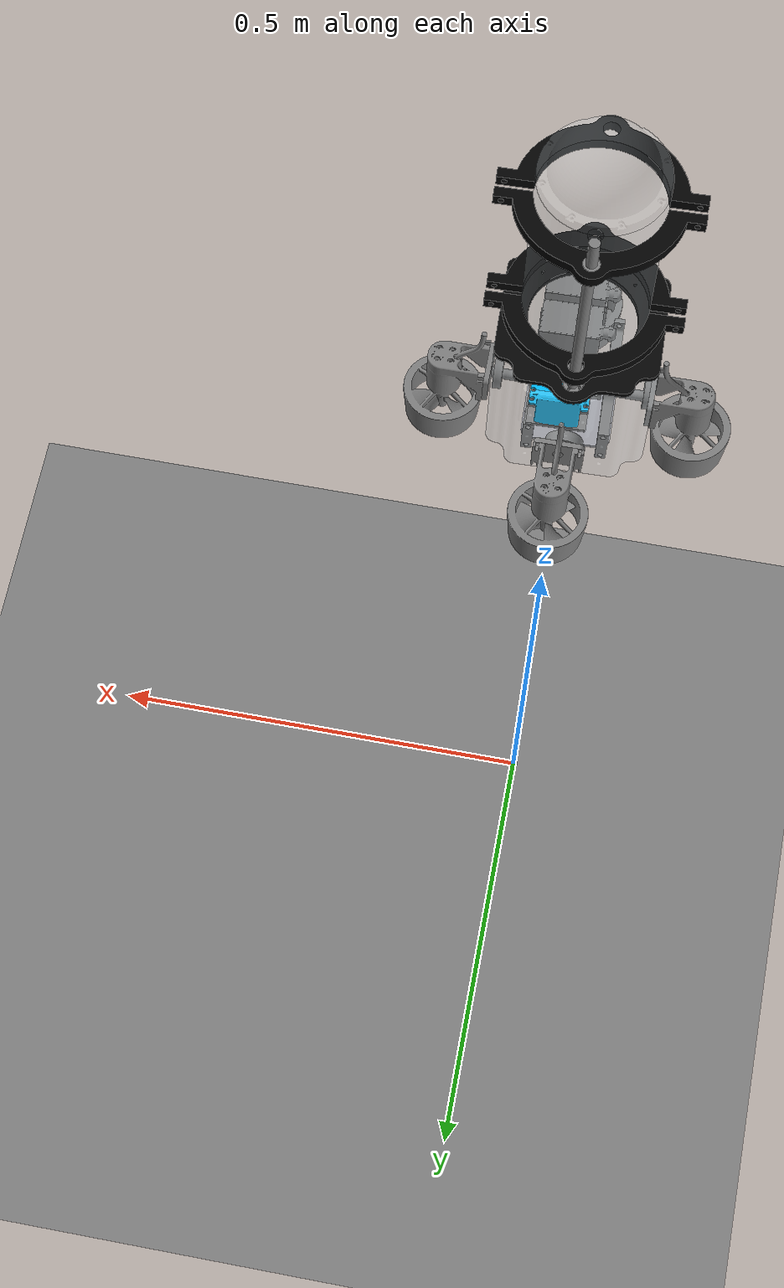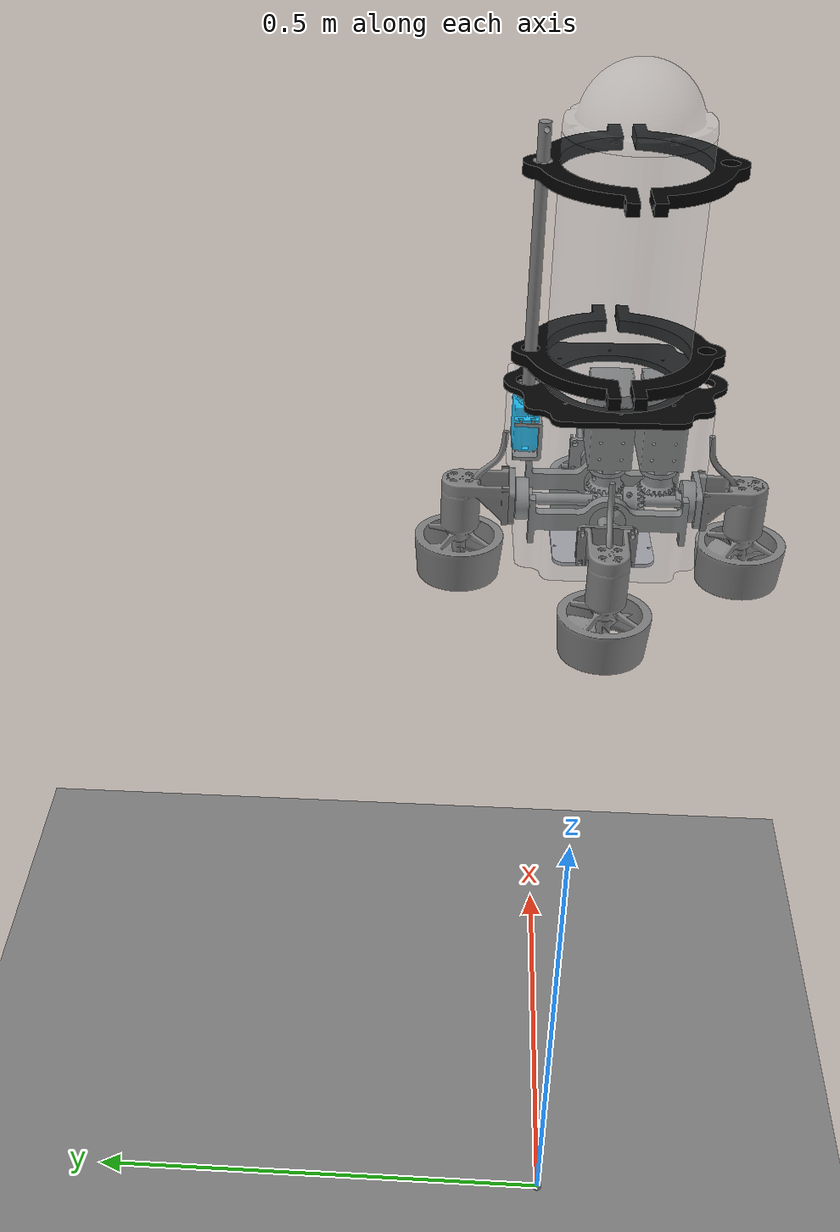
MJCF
<?xml version="1.0" encoding="utf-8"?>
<mujoco model="auv">
  <option timestep="0.01" gravity="0 0 0" integrator="implicitfast" density="1000" viscosity="0.0009">
    <flag />
  </option>

  <compiler meshdir="assets" angle="radian" autolimits="true"/>

  <visual>
    <global realtime="1"/>
    <quality shadowsize="1024" numslices="8" offsamples="0"/>
    <headlight diffuse="1 1 1" specular="0.5 0.5 0.5" active="1"/>
    <rgba fog="1 1 1 1" haze="1 1 1 1"/>
  </visual>

  <asset>
    <!-- 所有网格定义保持不变 -->
    <mesh file="ji_chu_zhuang_pei____base_1_2_hao_duo_ji_zhi_jia__3.stl"/>
    <mesh file="ji_chu_zhuang_pei____base_1_y_zhou_chuan_dong_gan__1.stl"/>
    <mesh file="ji_chu_zhuang_pei____base_1__dong_li_zhuang_zhi_wai_ke____shang_gai__2.stl"/>
    <mesh file="ji_chu_zhuang_pei____base_1__dong_li_zhuang_zhi_wai_ke____di_ban__1.stl"/>
    <mesh file="ji_chu_zhuang_pei____base_1__ban_yuan_cang_gai__1.stl"/>
    <mesh file="ji_chu_zhuang_pei____base_1__gu_ding_huan__1.stl"/>
    <mesh file="ji_chu_zhuang_pei____base_1__gu_ding_huan__2.stl"/>
    <mesh file="ji_chu_zhuang_pei____base_1__gu_ding_huan__3.stl"/>
    <mesh file="ji_chu_zhuang_pei____base_1__gu_ding_huan__4.stl"/>
    <mesh file="ji_chu_zhuang_pei____base_1__yuan_tong_xiang_ti__1.stl"/>
    <mesh file="ji_chu_zhuang_pei____base_1__yuan_zhui_chi_lun_20_1_5_1.stl"/>
    <mesh file="ji_chu_zhuang_pei____base_1__yuan_zhui_chi_lun_20_1_5_4.stl"/>
    <mesh file="ji_chu_zhuang_pei____base_1__yuan_zhui_chi_lun_20_1_5_5.stl"/>
    <mesh file="ji_chu_zhuang_pei____base_1__yuan_zhui_chi_lun_20_1_5_6.stl"/>
    <mesh file="ji_chu_zhuang_pei____base_1__yuan_zhui_chi_lun_20_1_5_7.stl"/>
    <mesh file="ji_chu_zhuang_pei____base_1__jia_zhao_chuan_dong_zhou__2.stl"/>
    <mesh file="ji_chu_zhuang_pei____base_1__jia_zhao_chuan_dong_zhou_lian_jie_jian__1.stl"/>
    <mesh file="ji_chu_zhuang_pei____base_1__xuan_bi_liang_zhi_cheng__1.stl"/>
    <mesh file="ji_chu_zhuang_pei____base_1__xuan_bi_liang_zhi_cheng__2.stl"/>
    <mesh file="ji_chu_zhuang_pei____base_1__jian_xiu_gai__1.stl"/>
    <mesh file="ji_chu_zhuang_pei____base_1__duo_ji___zhou_lian_jie_jian__1.stl"/>
    <mesh file="ji_chu_zhuang_pei____base_1__duo_ji___zhou_lian_jie_jian__2.stl"/>
    <mesh file="ji_chu_zhuang_pei____base_1__zhou_cheng_6200_1.stl"/>
    <mesh file="ji_chu_zhuang_pei____base_1__zhou_cheng_6200_2.stl"/>
    <mesh file="ji_chu_zhuang_pei____base_1__zhou_cheng_6200_3.stl"/>
    <mesh file="ji_chu_zhuang_pei____base_1__zhou_cheng_6200_4.stl"/>
    <mesh file="ji_chu_zhuang_pei____base_1__zhou_cheng_6202_1.stl"/>
    <mesh file="ji_chu_zhuang_pei____base_1__zhou_cheng_6202_2.stl"/>
    <mesh file="ji_chu_zhuang_pei____base_1__zhou_cheng_nei_10_wai_15_hou_4_1.stl"/>
    <mesh file="ji_chu_zhuang_pei____base_1__zhou_cheng_nei_10_wai_15_hou_4_2.stl"/>
    <mesh file="ji_chu_zhuang_pei____base_1__fang_shui_duo_ji__1.stl"/>
    <mesh file="ji_chu_zhuang_pei____base_1__fang_shui_duo_ji__2.stl"/>
    <mesh file="ji_chu_zhuang_pei____base_1__fang_shui_duo_ji___yi_ban__10.stl"/>
    <mesh file="ji_chu_zhuang_pei____up_1_x_zhou_tui_jin_qi_zhi_jia__1.stl"/>
    <mesh file="ji_chu_zhuang_pei____up_1__tui_jin_qi__1.stl"/>
    <mesh file="ji_chu_zhuang_pei____down_1_x_zhou_tui_jin_qi_zhi_jia__1.stl"/>
    <mesh file="ji_chu_zhuang_pei____down_1__tui_jin_qi__1.stl"/>
    <mesh file="ji_chu_zhuang_pei____left_1_y_zhou_tui_jin_qi_zhi_jia__1.stl"/>
    <mesh file="ji_chu_zhuang_pei____left_1__tui_jin_qi__1.stl"/>
    <mesh file="ji_chu_zhuang_pei____right_1_y_zhou_tui_jin_qi_zhi_jia__1.stl"/>
    <mesh file="ji_chu_zhuang_pei____right_1__tui_jin_qi__1.stl"/>

    <!-- 纹理与材质保持不变 -->
    <texture name="sky" type="skybox" file="assets/desert.png" gridsize="3 4" gridlayout=".U..LFRB.D.."/>
    <texture name="ground" type="2d" builtin="checker" rgb1="0.1 0.1 0.1" rgb2="0.9 0.9 0.9" width="256" height="256" mark="cross" markrgb="0.8 0.8 0.8"/>
    <material name="ground" texture="ground" reflectance="0" texrepeat="1 1" texuniform="true"/>
    <material name="acrylic_hull" rgba="0.9 0.95 0.98 0.15" specular="0.9" shininess="0.7"/>
    <texture name="carbon_texture" type="2d" builtin="checker" rgb1="0.08 0.08 0.08" rgb2="0.15 0.15 0.15" width="512" height="512" mark="edge" markrgb="0.9 0.9 0.9"/>
    <material name="carbon_fiber" texture="carbon_texture" texuniform="true" texrepeat="8 4" rgba="0.1 0.1 0.1 1" specular="0.9" shininess="0.8" reflectance="0.4"/>
    <material name="carbon_fiber_glossy" texture="carbon_texture" texuniform="true" texrepeat="16 8" rgba="0.12 0.12 0.12 1" specular="1.0" shininess="0.9" reflectance="0.6"/>
    <material name="carbon_fiber_matte" texture="carbon_texture" texuniform="true" texrepeat="12 6" rgba="0.15 0.15 0.15 1" specular="0.4" shininess="0.5" reflectance="0.1"/>
  </asset>

  <default>
    <default class="auv_base">
      <default class="visual">
        <geom type="mesh" contype="0" conaffinity="0" density="0" group="2"/>
      </default>
      <default class="collision">
        <geom priority="1" condim="6" group="3"/>
      </default>
      <site rgba="1 0 0 1" group="5"/>
    </default>

    <default class="friction">
      <geom condim="4" friction="0.9 0.5 0.1" solimp="0.9 0.95 0.001 0.5 2" solref="0.02 1"/>
    </default>
    <default class="fluid">
      <geom fluidshape="ellipsoid" fluidcoef="1.2 1.0 1.2 0.1 0.1"/>
    </default>
  </default>

  <worldbody>
    <light type="directional" pos="30 30 30" dir="0 -1 -1" diffuse="0.5 0.5 0.5" ambient="0.3 0.3 0.3" specular="0.5 0.5 0.5"/>
    <geom name="ground" type="plane" material="ground" pos="0 0 0" size="5 5 0.1" class="friction"/>

    <body name="base" pos="0 0 1" childclass="auv_base">
      <freejoint name="base"/>

      <!-- 基础部件：每个部件创建两个geom，视觉（仅渲染）和碰撞（带质量） -->
      <geom class="collision" type="mesh" mesh="ji_chu_zhuang_pei____base_1_2_hao_duo_ji_zhi_jia__3" mass="0.0158"/>
      <geom class="visual" type="mesh" mesh="ji_chu_zhuang_pei____base_1_2_hao_duo_ji_zhi_jia__3"/>
      <geom class="collision" type="mesh" mesh="ji_chu_zhuang_pei____base_1_y_zhou_chuan_dong_gan__1" mass="0.094174"/>
      <geom class="visual" type="mesh" mesh="ji_chu_zhuang_pei____base_1_y_zhou_chuan_dong_gan__1"/>
      <geom class="collision" type="mesh" mesh="ji_chu_zhuang_pei____base_1__dong_li_zhuang_zhi_wai_ke____shang_gai__2" mass="1" material="acrylic_hull"/>
      <geom class="visual" type="mesh" mesh="ji_chu_zhuang_pei____base_1__dong_li_zhuang_zhi_wai_ke____shang_gai__2" material="acrylic_hull"/>
      <geom class="collision" type="mesh" mesh="ji_chu_zhuang_pei____base_1__dong_li_zhuang_zhi_wai_ke____di_ban__1" mass="0.118807" material="carbon_fiber_matte"/>
      <geom class="visual" type="mesh" mesh="ji_chu_zhuang_pei____base_1__dong_li_zhuang_zhi_wai_ke____di_ban__1" material="carbon_fiber_matte"/>
      <geom class="collision" type="mesh" mesh="ji_chu_zhuang_pei____base_1__ban_yuan_cang_gai__1" mass="0.18051" material="acrylic_hull"/>
      <geom class="visual" type="mesh" mesh="ji_chu_zhuang_pei____base_1__ban_yuan_cang_gai__1" material="acrylic_hull"/>
      <geom class="collision" type="mesh" mesh="ji_chu_zhuang_pei____base_1__gu_ding_huan__1" mass="0.0682515" material="carbon_fiber"/>
      <geom class="visual" type="mesh" mesh="ji_chu_zhuang_pei____base_1__gu_ding_huan__1" material="carbon_fiber"/>
      <geom class="collision" type="mesh" mesh="ji_chu_zhuang_pei____base_1__gu_ding_huan__2" mass="0.0682515" material="carbon_fiber"/>
      <geom class="visual" type="mesh" mesh="ji_chu_zhuang_pei____base_1__gu_ding_huan__2" material="carbon_fiber"/>
      <geom class="collision" type="mesh" mesh="ji_chu_zhuang_pei____base_1__gu_ding_huan__3" mass="0.0682515" material="carbon_fiber"/>
      <geom class="visual" type="mesh" mesh="ji_chu_zhuang_pei____base_1__gu_ding_huan__3" material="carbon_fiber"/>
      <geom class="collision" type="mesh" mesh="ji_chu_zhuang_pei____base_1__gu_ding_huan__4" mass="0.0682515" material="carbon_fiber"/>
      <geom class="visual" type="mesh" mesh="ji_chu_zhuang_pei____base_1__gu_ding_huan__4" material="carbon_fiber"/>
      <geom class="collision" type="mesh" mesh="ji_chu_zhuang_pei____base_1__yuan_tong_xiang_ti__1" mass="0.6" material="acrylic_hull"/>
      <geom class="visual" type="mesh" mesh="ji_chu_zhuang_pei____base_1__yuan_tong_xiang_ti__1" material="acrylic_hull"/>
      <geom class="collision" type="mesh" mesh="ji_chu_zhuang_pei____base_1__yuan_zhui_chi_lun_20_1_5_1" mass="0.053667608"/>
      <geom class="visual" type="mesh" mesh="ji_chu_zhuang_pei____base_1__yuan_zhui_chi_lun_20_1_5_1"/>
      <geom class="collision" type="mesh" mesh="ji_chu_zhuang_pei____base_1__yuan_zhui_chi_lun_20_1_5_4" mass="0.053667608"/>
      <geom class="visual" type="mesh" mesh="ji_chu_zhuang_pei____base_1__yuan_zhui_chi_lun_20_1_5_4"/>
      <geom class="collision" type="mesh" mesh="ji_chu_zhuang_pei____base_1__yuan_zhui_chi_lun_20_1_5_5" mass="0.053667608"/>
      <geom class="visual" type="mesh" mesh="ji_chu_zhuang_pei____base_1__yuan_zhui_chi_lun_20_1_5_5"/>
      <geom class="collision" type="mesh" mesh="ji_chu_zhuang_pei____base_1__yuan_zhui_chi_lun_20_1_5_6" mass="0.053667608"/>
      <geom class="visual" type="mesh" mesh="ji_chu_zhuang_pei____base_1__yuan_zhui_chi_lun_20_1_5_6"/>
      <geom class="collision" type="mesh" mesh="ji_chu_zhuang_pei____base_1__yuan_zhui_chi_lun_20_1_5_7" mass="0.053667608"/>
      <geom class="visual" type="mesh" mesh="ji_chu_zhuang_pei____base_1__yuan_zhui_chi_lun_20_1_5_7"/>
      <geom class="collision" type="mesh" mesh="ji_chu_zhuang_pei____base_1__jia_zhao_chuan_dong_zhou__2" mass="0.135"/>
      <geom class="visual" type="mesh" mesh="ji_chu_zhuang_pei____base_1__jia_zhao_chuan_dong_zhou__2"/>
      <geom class="collision" type="mesh" mesh="ji_chu_zhuang_pei____base_1__jia_zhao_chuan_dong_zhou_lian_jie_jian__1" mass="0.00155358"/>
      <geom class="visual" type="mesh" mesh="ji_chu_zhuang_pei____base_1__jia_zhao_chuan_dong_zhou_lian_jie_jian__1"/>
      <geom class="collision" type="mesh" mesh="ji_chu_zhuang_pei____base_1__xuan_bi_liang_zhi_cheng__1" mass="0.120"/>
      <geom class="visual" type="mesh" mesh="ji_chu_zhuang_pei____base_1__xuan_bi_liang_zhi_cheng__1"/>
      <geom class="collision" type="mesh" mesh="ji_chu_zhuang_pei____base_1__xuan_bi_liang_zhi_cheng__2" mass="0.120"/>
      <geom class="visual" type="mesh" mesh="ji_chu_zhuang_pei____base_1__xuan_bi_liang_zhi_cheng__2"/>
      <geom class="collision" type="mesh" mesh="ji_chu_zhuang_pei____base_1__jian_xiu_gai__1" mass="0.02507244" rgba="0.65 0.65 0.68 1"/>
      <geom class="visual" type="mesh" mesh="ji_chu_zhuang_pei____base_1__jian_xiu_gai__1" rgba="0.65 0.65 0.68 1"/>
      <geom class="collision" type="mesh" mesh="ji_chu_zhuang_pei____base_1__duo_ji___zhou_lian_jie_jian__1" mass="0.03"/>
      <geom class="visual" type="mesh" mesh="ji_chu_zhuang_pei____base_1__duo_ji___zhou_lian_jie_jian__1"/>
      <geom class="collision" type="mesh" mesh="ji_chu_zhuang_pei____base_1__duo_ji___zhou_lian_jie_jian__2" mass="0.03"/>
      <geom class="visual" type="mesh" mesh="ji_chu_zhuang_pei____base_1__duo_ji___zhou_lian_jie_jian__2"/>
      <geom class="collision" type="mesh" mesh="ji_chu_zhuang_pei____base_1__zhou_cheng_6200_1" mass="0.032"/>
      <geom class="visual" type="mesh" mesh="ji_chu_zhuang_pei____base_1__zhou_cheng_6200_1"/>
      <geom class="collision" type="mesh" mesh="ji_chu_zhuang_pei____base_1__zhou_cheng_6200_2" mass="0.032"/>
      <geom class="visual" type="mesh" mesh="ji_chu_zhuang_pei____base_1__zhou_cheng_6200_2"/>
      <geom class="collision" type="mesh" mesh="ji_chu_zhuang_pei____base_1__zhou_cheng_6200_3" mass="0.032"/>
      <geom class="visual" type="mesh" mesh="ji_chu_zhuang_pei____base_1__zhou_cheng_6200_3"/>
      <geom class="collision" type="mesh" mesh="ji_chu_zhuang_pei____base_1__zhou_cheng_6200_4" mass="0.032"/>
      <geom class="visual" type="mesh" mesh="ji_chu_zhuang_pei____base_1__zhou_cheng_6200_4"/>
      <geom class="collision" type="mesh" mesh="ji_chu_zhuang_pei____base_1__zhou_cheng_6202_1" mass="0.032"/>
      <geom class="visual" type="mesh" mesh="ji_chu_zhuang_pei____base_1__zhou_cheng_6202_1"/>
      <geom class="collision" type="mesh" mesh="ji_chu_zhuang_pei____base_1__zhou_cheng_6202_2" mass="0.032"/>
      <geom class="visual" type="mesh" mesh="ji_chu_zhuang_pei____base_1__zhou_cheng_6202_2"/>
      <geom class="collision" type="mesh" mesh="ji_chu_zhuang_pei____base_1__zhou_cheng_nei_10_wai_15_hou_4_1" mass="0.03"/>
      <geom class="visual" type="mesh" mesh="ji_chu_zhuang_pei____base_1__zhou_cheng_nei_10_wai_15_hou_4_1"/>
      <geom class="collision" type="mesh" mesh="ji_chu_zhuang_pei____base_1__zhou_cheng_nei_10_wai_15_hou_4_2" mass="0.03"/>
      <geom class="visual" type="mesh" mesh="ji_chu_zhuang_pei____base_1__zhou_cheng_nei_10_wai_15_hou_4_2"/>
      <geom class="collision" type="mesh" mesh="ji_chu_zhuang_pei____base_1__fang_shui_duo_ji__1" mass="0.36"/>
      <geom class="visual" type="mesh" mesh="ji_chu_zhuang_pei____base_1__fang_shui_duo_ji__1"/>
      <geom class="collision" type="mesh" mesh="ji_chu_zhuang_pei____base_1__fang_shui_duo_ji__2" mass="0.36"/>
      <geom class="visual" type="mesh" mesh="ji_chu_zhuang_pei____base_1__fang_shui_duo_ji__2"/>
      <geom class="collision" type="mesh" mesh="ji_chu_zhuang_pei____base_1__fang_shui_duo_ji___yi_ban__10" mass="0.36" rgba="0.0 0.75 1.0 1"/>
      <geom class="visual" type="mesh" mesh="ji_chu_zhuang_pei____base_1__fang_shui_duo_ji___yi_ban__10" rgba="0.0 0.75 1.0 1"/>

<site name="thrust_up_site" pos="0.07629058 0.00222789 -0.11788090" type="sphere" size="0.01" rgba="1 0 0 0.5"/>
<site name="thrust_down_site" pos="-0.07365844 0.00168283 -0.11788090" type="sphere" size="0.01" rgba="0 1 0 0.5"/>
<site name="thrust_left_site" pos="0.00063929 0.07524704 -0.11788090" type="sphere" size="0.01" rgba="0 0 1 0.5"/>
<site name="thrust_right_site" pos="0.00327143 -0.07470197 -0.11788090" type="sphere" size="0.01" rgba="1 1 0 0.5"/>

<body name="body_servo_up" pos="0.07629058 0.00222789 -0.11788090" euler="0 1.570796326795 0" childclass="auv_base">
        <joint name="joint_servo_up" type="hinge" axis="0 0 1" range="-1.57079632679 1.57079632679" damping="0.1" armature="0.01"/>
        <geom class="collision" type="mesh" mesh="ji_chu_zhuang_pei____up_1_x_zhou_tui_jin_qi_zhi_jia__1" mass="0.1"/>
        <geom class="visual" type="mesh" mesh="ji_chu_zhuang_pei____up_1_x_zhou_tui_jin_qi_zhi_jia__1"/>
        <body name="body_servo_up_prop" pos="0 0 0" childclass="auv_base">
          <joint name="joint_prop_up" type="hinge" axis="0 0 1" range="0 0" damping="0.01" armature="0.001"/>
          <geom class="collision" type="mesh" mesh="ji_chu_zhuang_pei____up_1__tui_jin_qi__1" mass="0.01"/>
          <geom class="visual" type="mesh" mesh="ji_chu_zhuang_pei____up_1__tui_jin_qi__1"/>
        </body>
      </body>

      <body name="body_servo_down" pos="-0.07365844 0.00168283 -0.11788090" euler="0 -1.570796326795 -3.1415926" childclass="auv_base">
        <joint name="joint_servo_down" type="hinge" axis="0 0 1" range="-1.57079632679 1.57079632679" damping="0.1" armature="0.01"/>
        <geom class="collision" type="mesh" mesh="ji_chu_zhuang_pei____down_1_x_zhou_tui_jin_qi_zhi_jia__1" mass="0.1"/>
        <geom class="visual" type="mesh" mesh="ji_chu_zhuang_pei____down_1_x_zhou_tui_jin_qi_zhi_jia__1"/>
        <body name="body_servo_down_prop" pos="0 0 0" childclass="auv_base">
          <joint name="joint_prop_down" type="hinge" axis="0 0 1" range="0 0" damping="0.01" armature="0.001"/>
          <geom class="collision" type="mesh" mesh="ji_chu_zhuang_pei____down_1__tui_jin_qi__1" mass="0.01"/>
          <geom class="visual" type="mesh" mesh="ji_chu_zhuang_pei____down_1__tui_jin_qi__1"/>
        </body>
      </body>

      <body name="body_servo_left" pos="0.00063929 0.07524704 -0.11788090" euler="-1.570796326795 0 1.570796326795" childclass="auv_base">
        <joint name="joint_servo_left" type="hinge" axis="0 0 1" range="-1.57079632679 1.57079632679" damping="0.1" armature="0.01"/>
        <geom class="collision" type="mesh" mesh="ji_chu_zhuang_pei____left_1_y_zhou_tui_jin_qi_zhi_jia__1" mass="0.1"/>
        <geom class="visual" type="mesh" mesh="ji_chu_zhuang_pei____left_1_y_zhou_tui_jin_qi_zhi_jia__1"/>
        <body name="body_servo_left_prop" pos="0 0 0" childclass="auv_base">
          <joint name="joint_prop_left" type="hinge" axis="0 0 1" range="0 0" damping="0.01" armature="0.001"/>
          <geom class="collision" type="mesh" mesh="ji_chu_zhuang_pei____left_1__tui_jin_qi__1" mass="0.01"/>
          <geom class="visual" type="mesh" mesh="ji_chu_zhuang_pei____left_1__tui_jin_qi__1"/>
        </body>
      </body>

      <body name="body_servo_right" pos="0.00327143 -0.07470197 -0.11788090" euler="1.570796326795 0 -1.570796326795" childclass="auv_base">
        <joint name="joint_servo_right" type="hinge" axis="0 0 1" range="-1.57079632679 1.57079632679" damping="0.1" armature="0.01"/>
        <geom class="collision" type="mesh" mesh="ji_chu_zhuang_pei____right_1_y_zhou_tui_jin_qi_zhi_jia__1" mass="0.1"/>
        <geom class="visual" type="mesh" mesh="ji_chu_zhuang_pei____right_1_y_zhou_tui_jin_qi_zhi_jia__1"/>
        <body name="body_servo_right_prop" pos="0 0 0" childclass="auv_base">
          <joint name="joint_prop_right" type="hinge" axis="0 0 1" range="0 0" damping="0.01" armature="0.001"/>
          <geom class="collision" type="mesh" mesh="ji_chu_zhuang_pei____right_1__tui_jin_qi__1" mass="0.01"/>
          <geom class="visual" type="mesh" mesh="ji_chu_zhuang_pei____right_1__tui_jin_qi__1"/>
        </body>
      </body>
    </body>

    <site name="world_z" pos="0 0 0"/>
  </worldbody>

  <equality>
    <joint joint1="joint_servo_down" joint2="joint_servo_up" polycoef="0 1 0 0 0"/>
    <joint joint1="joint_servo_right" joint2="joint_servo_left" polycoef="0 -1 0 0 0"/>
  </equality>

  <contact>
    <exclude body1="base" body2="body_servo_left"/>
    <exclude body1="base" body2="body_servo_right"/>
    <exclude body1="base" body2="body_servo_up"/>
    <exclude body1="base" body2="body_servo_down"/>
  </contact>

  <actuator>
    <position name="servo_v_cmd" joint="joint_servo_up" kp="20" ctrlrange="-1.57 1.57"/>
    <position name="servo_h_cmd" joint="joint_servo_left" kp="20" ctrlrange="-1.57 1.57"/>

    <!-- 上推进器 -->
    <general name="thruster_up_z"
            site="thrust_up_site"
            gaintype="fixed"   gainprm="1 0 0 0 0 0"
            biastype="affine"  biasprm="0 0 0 0 0 0"
            gear="0 0 1 0 0 0" ctrllimited="false"/>
    <general name="thruster_up_y"
            site="thrust_up_site"
            gaintype="fixed"   gainprm="1 0 0 0 0 0"
            biastype="affine"  biasprm="0 0 0 0 0 0"
            gear="0 -1 0 0 0 0" ctrllimited="false"/>

    <!-- 下推进器 -->
    <general name="thruster_down_z"
            site="thrust_down_site"
            gaintype="fixed"   gainprm="1 0 0 0 0 0"
            biastype="affine"  biasprm="0 0 0 0 0 0"
            gear="0 0 1 0 0 0" ctrllimited="false"/>
    <general name="thruster_down_y"
            site="thrust_down_site"
            gaintype="fixed"   gainprm="1 0 0 0 0 0"
            biastype="affine"  biasprm="0 0 0 0 0 0"
            gear="0 1 0 0 0 0" ctrllimited="false"/>

    <!-- 左推进器 -->
    <general name="thruster_left_z"
            site="thrust_left_site"
            gaintype="fixed"   gainprm="1 0 0 0 0 0"
            biastype="affine"  biasprm="0 0 0 0 0 0"
            gear="0 0 1 0 0 0" ctrllimited="false"/>
    <general name="thruster_left_x"
            site="thrust_left_site"
            gaintype="fixed"   gainprm="1 0 0 0 0 0"
            biastype="affine"  biasprm="0 0 0 0 0 0"
            gear="1 0 0 0 0 0" ctrllimited="false"/>

    <!-- 右推进器 -->
    <general name="thruster_right_z"
            site="thrust_right_site"
            gaintype="fixed"   gainprm="1 0 0 0 0 0"
            biastype="affine"  biasprm="0 0 0 0 0 0"
            gear="0 0 1 0 0 0" ctrllimited="false" />
    <!-- 右推进器 -->
    <general name="thruster_right_x"
            site="thrust_right_site"
            gaintype="fixed"   gainprm="1 0 0 0 0 0"
            biastype="affine"  biasprm="0 0 0 0 0 0"
            gear="1 0 0 0 0 0" ctrllimited="false"/>
  </actuator>

</mujoco>
